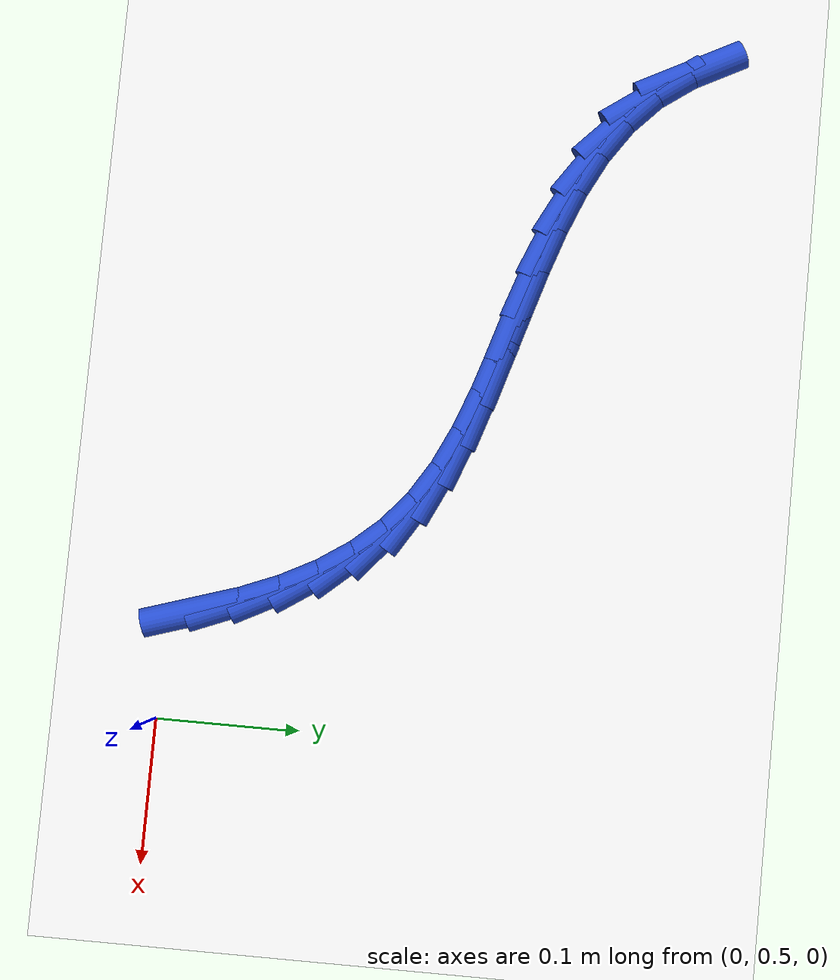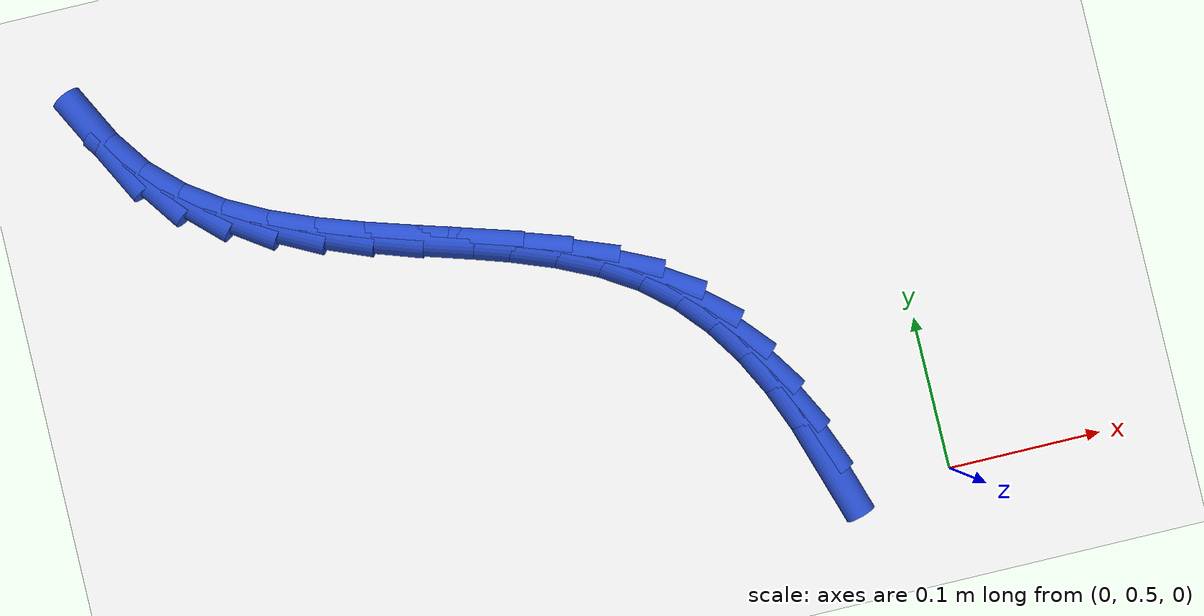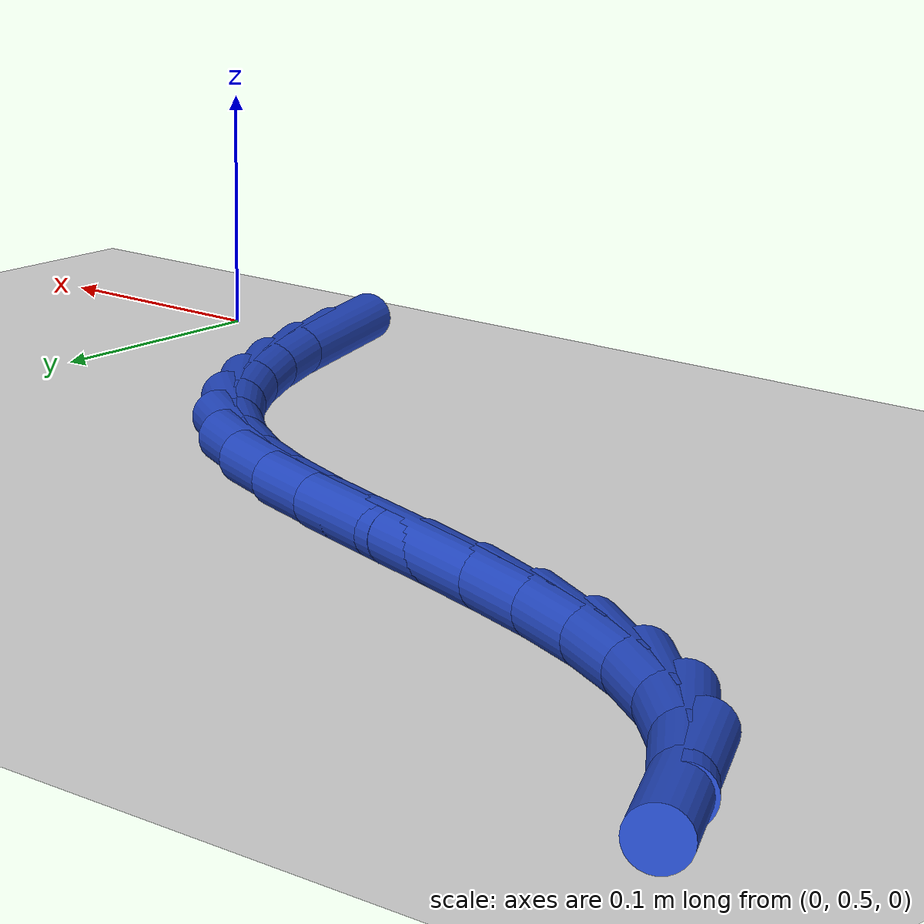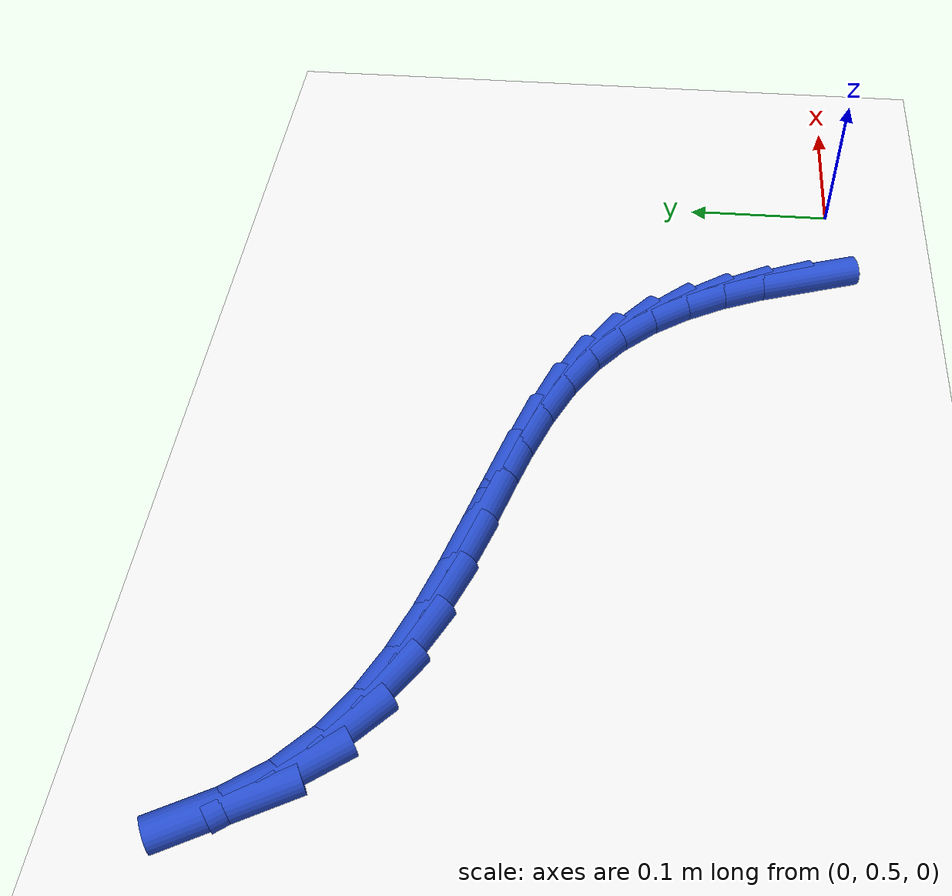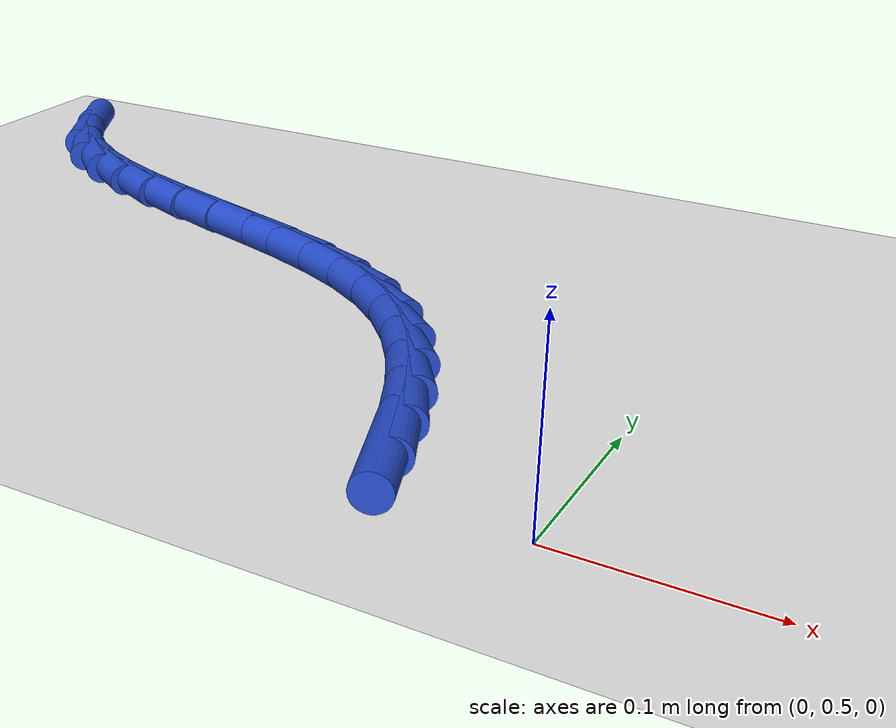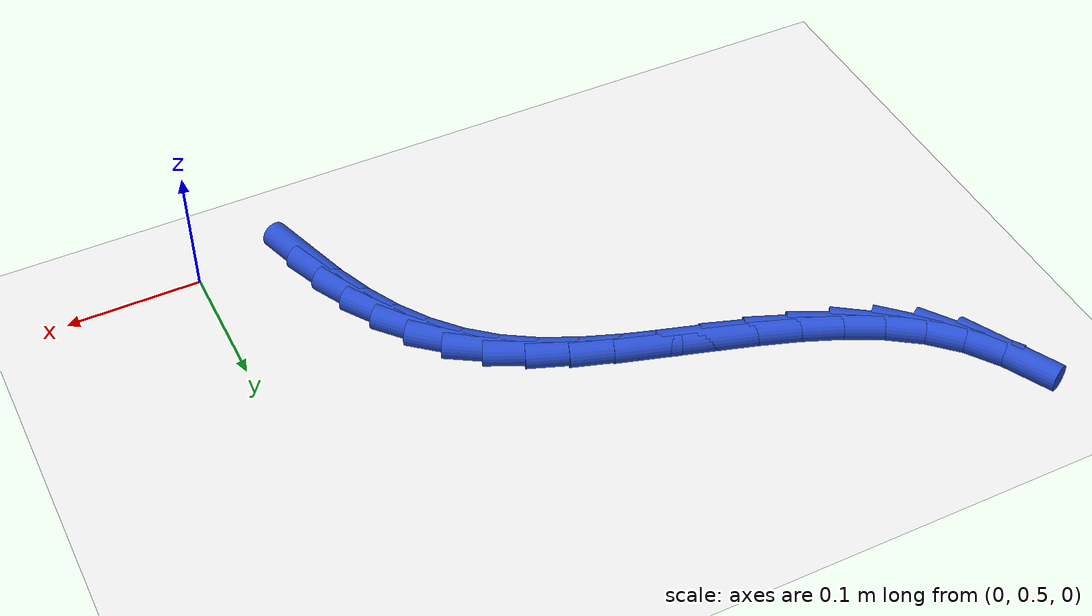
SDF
<sdf version="1.6">
 <world name="default">
  <model name="ground_plane">
   <static>1</static>
   <link name="link">
    <collision name="collision">
     <geometry><plane><normal>0 0 1</normal><size>100 100</size></plane></geometry>
     <surface><friction><ode><mu>100</mu><mu2>50</mu2></ode></friction></surface>
    </collision>
    <visual name="visual">
     <cast_shadows>0</cast_shadows>
     <geometry><plane><normal>0 0 1</normal><size>100 100</size></plane></geometry>
     <material>
      <script><uri>file://media/materials/scripts/gazebo.material</uri><name>Gazebo/WhiteGlow</name></script>
     </material>
    </visual>
   </link>
  </model>
  <model name="line">
   <link name="link_17">
    <pose>-0.07661812421545054 0.5238114639683142 0.01 0 1.57 -1.2614081170068991</pose>
    <collision name="collision">
     <geometry><cylinder><radius>0.01</radius><length>0.08</length></cylinder></geometry>
    </collision>
    <visual name="visual">
     <material>
      <script><name>Gazebo/Blue</name><uri>file://media/materials/scripts/gazebo.material</uri></script>
     </material>
     <geometry><cylinder><radius>0.01</radius><length>0.08</length></cylinder></geometry>
    </visual>
   </link>
   <link name="link_18">
    <pose>-0.08585708685458489 0.552714557564488 0.01 0 1.57 -1.185314888725097</pose>
    <collision name="collision">
     <geometry><cylinder><radius>0.01</radius><length>0.08</length></cylinder></geometry>
    </collision>
    <visual name="visual">
     <material>
      <script><name>Gazebo/Blue</name><uri>file://media/materials/scripts/gazebo.material</uri></script>
     </material>
     <geometry><cylinder><radius>0.01</radius><length>0.08</length></cylinder></geometry>
    </visual>
   </link>
   <link name="link_19">
    <pose>-0.09692043976377004 0.5799787926516613 0.01 0 1.57 -1.0921724006722007</pose>
    <collision name="collision">
     <geometry><cylinder><radius>0.01</radius><length>0.08</length></cylinder></geometry>
    </collision>
    <visual name="visual">
     <material>
      <script><name>Gazebo/Blue</name><uri>file://media/materials/scripts/gazebo.material</uri></script>
     </material>
     <geometry><cylinder><radius>0.01</radius><length>0.08</length></cylinder></geometry>
    </visual>
   </link>
   <link name="link_20">
    <pose>-0.11007231596411846 0.6053262827881312 0.01 0 1.57 -0.9807246017821325</pose>
    <collision name="collision">
     <geometry><cylinder><radius>0.01</radius><length>0.08</length></cylinder></geometry>
    </collision>
    <visual name="visual">
     <material>
      <script><name>Gazebo/Blue</name><uri>file://media/materials/scripts/gazebo.material</uri></script>
     </material>
     <geometry><cylinder><radius>0.01</radius><length>0.08</length></cylinder></geometry>
    </visual>
   </link>
   <link name="link_21">
    <pose>-0.1255768484767426 0.6284791415321941 0.01 0 1.57 -0.8512540655399563</pose>
    <collision name="collision">
     <geometry><cylinder><radius>0.01</radius><length>0.08</length></cylinder></geometry>
    </collision>
    <visual name="visual">
     <material>
      <script><name>Gazebo/Blue</name><uri>file://media/materials/scripts/gazebo.material</uri></script>
     </material>
     <geometry><cylinder><radius>0.01</radius><length>0.08</length></cylinder></geometry>
    </visual>
   </link>
   <link name="link_22">
    <pose>-0.14369817032275484 0.6491594824421467 0.01 0 1.57 -0.7066470209463559</pose>
    <collision name="collision">
     <geometry><cylinder><radius>0.01</radius><length>0.08</length></cylinder></geometry>
    </collision>
    <visual name="visual">
     <material>
      <script><name>Gazebo/Blue</name><uri>file://media/materials/scripts/gazebo.material</uri></script>
     </material>
     <geometry><cylinder><radius>0.01</radius><length>0.08</length></cylinder></geometry>
    </visual>
   </link>
   <link name="link_23">
    <pose>-0.16470041452326764 0.6670894190762858 0.01 0 1.57 -0.5587662865493092</pose>
    <collision name="collision">
     <geometry><cylinder><radius>0.01</radius><length>0.08</length></cylinder></geometry>
    </collision>
    <visual name="visual">
     <material>
      <script><name>Gazebo/Blue</name><uri>file://media/materials/scripts/gazebo.material</uri></script>
     </material>
     <geometry><cylinder><radius>0.01</radius><length>0.08</length></cylinder></geometry>
    </visual>
   </link>
   <link name="link_24">
    <pose>-0.18872933492028682 0.6821130742859268 0.01 0 1.57 -0.4416547844708237</pose>
    <collision name="collision">
     <geometry><cylinder><radius>0.01</radius><length>0.08</length></cylinder></geometry>
    </collision>
    <visual name="visual">
     <material>
      <script><name>Gazebo/Blue</name><uri>file://media/materials/scripts/gazebo.material</uri></script>
     </material>
     <geometry><cylinder><radius>0.01</radius><length>0.08</length></cylinder></geometry>
    </visual>
   </link>
   <link name="link_25">
    <pose>-0.2153324680510525 0.6946911326436002 0.01 0 1.57 -0.36142009280151555</pose>
    <collision name="collision">
     <geometry><cylinder><radius>0.01</radius><length>0.08</length></cylinder></geometry>
    </collision>
    <visual name="visual">
     <material>
      <script><name>Gazebo/Blue</name><uri>file://media/materials/scripts/gazebo.material</uri></script>
     </material>
     <geometry><cylinder><radius>0.01</radius><length>0.08</length></cylinder></geometry>
    </visual>
   </link>
   <link name="link_26">
    <pose>-0.24386882220752884 0.705478588211849 0.01 0 1.57 -0.3129473092655493</pose>
    <collision name="collision">
     <geometry><cylinder><radius>0.01</radius><length>0.08</length></cylinder></geometry>
    </collision>
    <visual name="visual">
     <material>
      <script><name>Gazebo/Blue</name><uri>file://media/materials/scripts/gazebo.material</uri></script>
     </material>
     <geometry><cylinder><radius>0.01</radius><length>0.08</length></cylinder></geometry>
    </visual>
   </link>
   <link name="link_27">
    <pose>-0.27369733504160443 0.7151305078594778 0.01 0 1.57 -0.2922863754003836</pose>
    <collision name="collision">
     <geometry><cylinder><radius>0.01</radius><length>0.08</length></cylinder></geometry>
    </collision>
    <visual name="visual">
     <material>
      <script><name>Gazebo/Blue</name><uri>file://media/materials/scripts/gazebo.material</uri></script>
     </material>
     <geometry><cylinder><radius>0.01</radius><length>0.08</length></cylinder></geometry>
    </visual>
   </link>
   <link name="link_28">
    <pose>-0.3041769442051682 0.7243019584552928 0.01 0 1.57 -0.2974385430829808</pose>
    <collision name="collision">
     <geometry><cylinder><radius>0.01</radius><length>0.08</length></cylinder></geometry>
    </collision>
    <visual name="visual">
     <material>
      <script><name>Gazebo/Blue</name><uri>file://media/materials/scripts/gazebo.material</uri></script>
     </material>
     <geometry><cylinder><radius>0.01</radius><length>0.08</length></cylinder></geometry>
    </visual>
   </link>
   <link name="link_29">
    <pose>-0.334666587350109 0.7336480068680986 0.01 0 1.57 -0.3284523495971984</pose>
    <collision name="collision">
     <geometry><cylinder><radius>0.01</radius><length>0.08</length></cylinder></geometry>
    </collision>
    <visual name="visual">
     <material>
      <script><name>Gazebo/Blue</name><uri>file://media/materials/scripts/gazebo.material</uri></script>
     </material>
     <geometry><cylinder><radius>0.01</radius><length>0.08</length></cylinder></geometry>
    </visual>
   </link>
   <link name="link_30">
    <pose>-0.36452520212831585 0.743823719966701 0.01 0 1.57 -0.3872981602120869</pose>
    <collision name="collision">
     <geometry><cylinder><radius>0.01</radius><length>0.08</length></cylinder></geometry>
    </collision>
    <visual name="visual">
     <material>
      <script><name>Gazebo/Blue</name><uri>file://media/materials/scripts/gazebo.material</uri></script>
     </material>
     <geometry><cylinder><radius>0.01</radius><length>0.08</length></cylinder></geometry>
    </visual>
   </link>
   <link name="link_31">
    <pose>-0.39311172619167734 0.7554841646199053 0.01 0 1.57 -0.4774539808486102</pose>
    <collision name="collision">
     <geometry><cylinder><radius>0.01</radius><length>0.08</length></cylinder></geometry>
    </collision>
    <visual name="visual">
     <material>
      <script><name>Gazebo/Blue</name><uri>file://media/materials/scripts/gazebo.material</uri></script>
     </material>
     <geometry><cylinder><radius>0.01</radius><length>0.08</length></cylinder></geometry>
    </visual>
   </link>
   <link name="link_32">
    <pose>-0.41978509719208246 0.7692844076965165 0.01 0 1.57 -0.602658568605454</pose>
    <collision name="collision">
     <geometry><cylinder><radius>0.01</radius><length>0.08</length></cylinder></geometry>
    </collision>
    <visual name="visual">
     <material>
      <script><name>Gazebo/Blue</name><uri>file://media/materials/scripts/gazebo.material</uri></script>
     </material>
     <geometry><cylinder><radius>0.01</radius><length>0.08</length></cylinder></geometry>
    </visual>
   </link>
   <link name="link_33">
    <pose>-0.4439042527814202 0.7858795160653407 0.01 0 1.57 -0.7639501347197892</pose>
    <collision name="collision">
     <geometry><cylinder><radius>0.01</radius><length>0.08</length></cylinder></geometry>
    </collision>
    <visual name="visual">
     <material>
      <script><name>Gazebo/Blue</name><uri>file://media/materials/scripts/gazebo.material</uri></script>
     </material>
     <geometry><cylinder><radius>0.01</radius><length>0.08</length></cylinder></geometry>
    </visual>
   </link>
   <link name="link_34">
    <pose>-0.46482813061157907 0.8059245565951821 0.01 0 1.57 -0.9504901798072123</pose>
    <collision name="collision">
     <geometry><cylinder><radius>0.01</radius><length>0.08</length></cylinder></geometry>
    </collision>
    <visual name="visual">
     <material>
      <script><name>Gazebo/Blue</name><uri>file://media/materials/scripts/gazebo.material</uri></script>
     </material>
     <geometry><cylinder><radius>0.01</radius><length>0.08</length></cylinder></geometry>
    </visual>
   </link>
   <link name="link_35">
    <pose>-0.48200562203535996 0.8299701638669684 0.01 0 1.57 -1.0935989798500274</pose>
    <collision name="collision">
     <geometry><cylinder><radius>0.01</radius><length>0.08</length></cylinder></geometry>
    </collision>
    <visual name="visual">
     <material>
      <script><name>Gazebo/Blue</name><uri>file://media/materials/scripts/gazebo.material</uri></script>
     </material>
     <geometry><cylinder><radius>0.01</radius><length>0.08</length></cylinder></geometry>
    </visual>
   </link>
  </model>
 </world>
</sdf>
